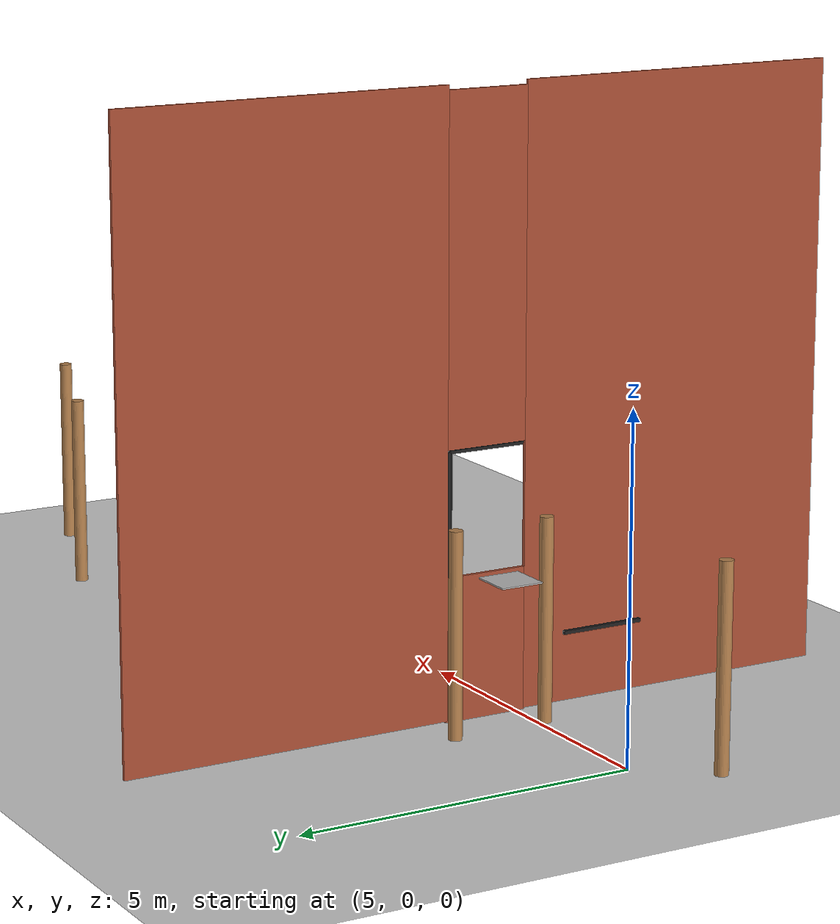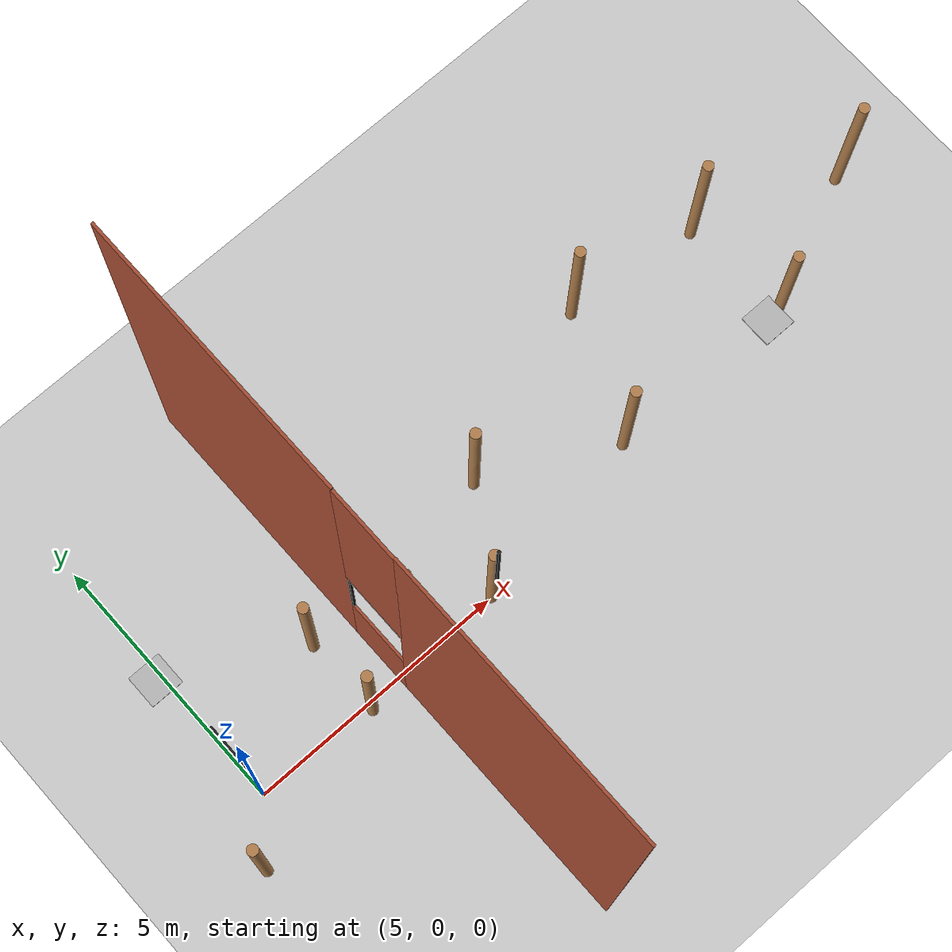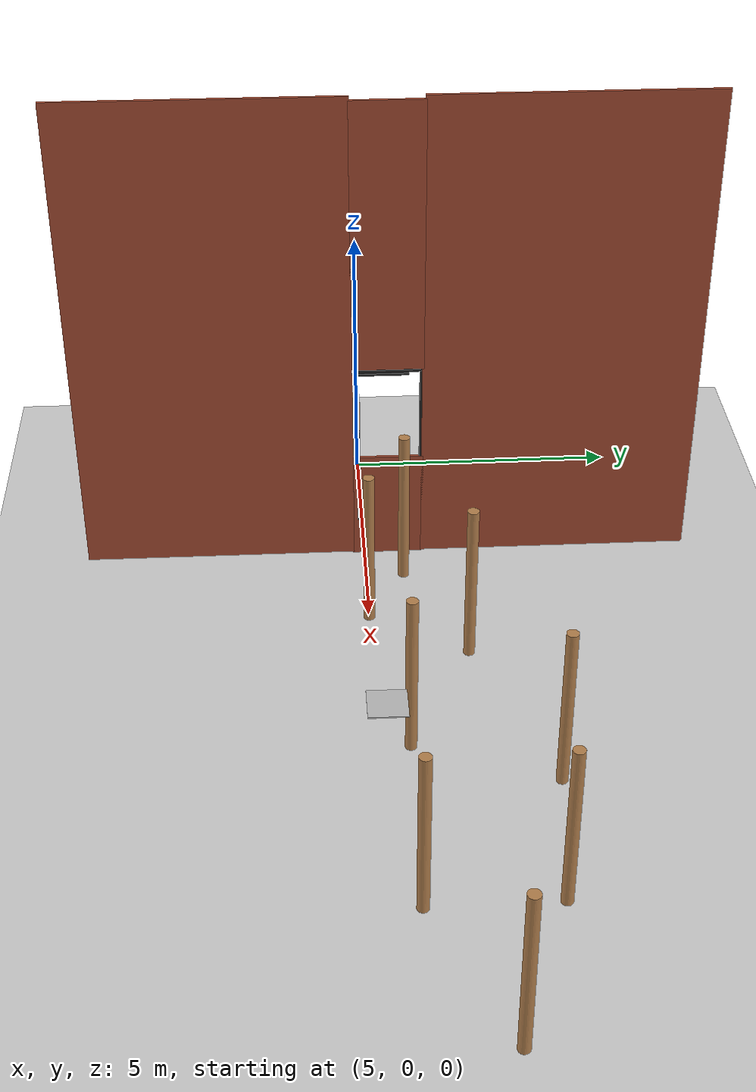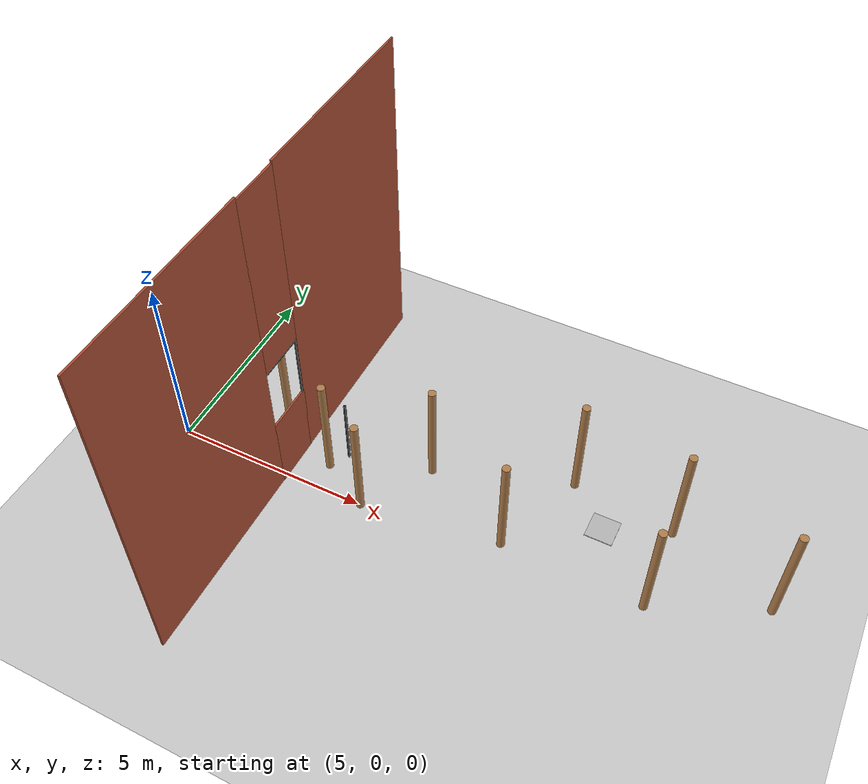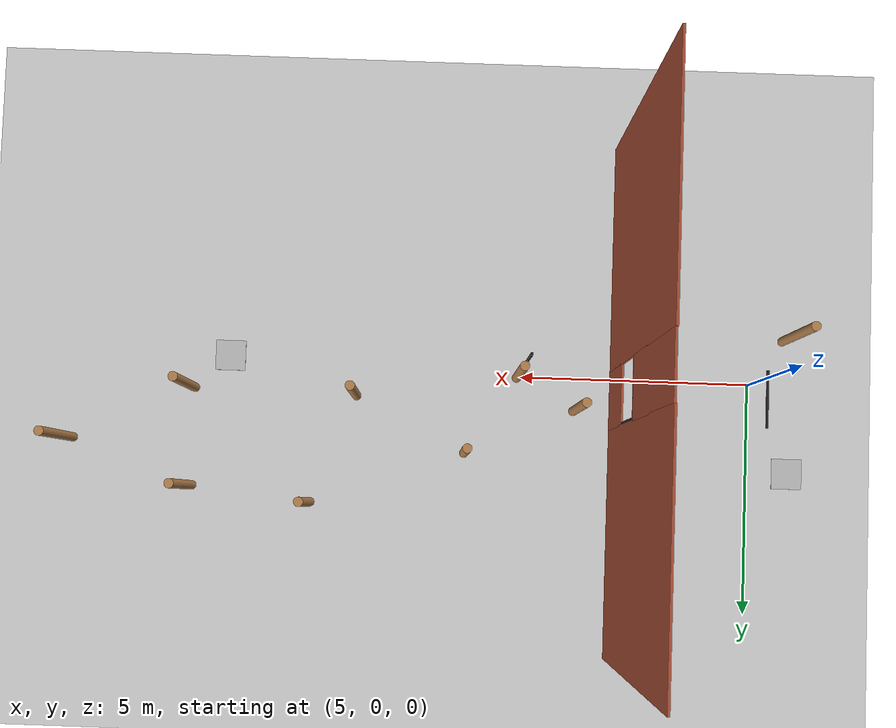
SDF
<sdf version="1.6">
 <world name="default">
  <light name="sun" type="directional">
   <pose>0 0 10 0 -0 0</pose>
   <diffuse>0.8 0.8 0.8 1</diffuse>
   <specular>0.2 0.2 0.2 1</specular>
   <attenuation>
    <range>1000</range>
    <constant>0.9</constant>
    <linear>0.01</linear>
    <quadratic>0.001</quadratic>
   </attenuation>
   <direction>-0.5 0.1 -0.9</direction>
  </light>
  <model name="ground_plane">
   <static>1</static>
   <link name="link">
    <collision name="collision">
     <geometry><plane><normal>0 0 1</normal><size>100 100</size></plane></geometry>
     <surface><friction><ode><mu>100</mu><mu2>50</mu2></ode></friction></surface>
    </collision>
    <visual name="visual">
     <cast_shadows>0</cast_shadows>
     <geometry><plane><normal>0 0 1</normal><size>100 100</size></plane></geometry>
     <material>
      <script><uri>file://media/materials/scripts/gazebo.material</uri><name>Gazebo/Grey</name></script>
     </material>
    </visual>
   </link>
  </model>
  <gravity>0 0 -9.8</gravity>
  <magnetic_field>6e-06 2.3e-05 -4.2e-05</magnetic_field>
  <atmosphere type="adiabatic"/>
  <physics name="default_physics" default="0" type="ode">
   <max_step_size>0.004</max_step_size>
   <real_time_factor>1</real_time_factor>
   <real_time_update_rate>250</real_time_update_rate>
  </physics>
  <scene><ambient>0.4 0.4 0.4 1</ambient><background>0.7 0.7 0.7 1</background><shadows>1</shadows></scene>
  <spherical_coordinates>
   <surface_model>EARTH_WGS84</surface_model>
   <latitude_deg>0</latitude_deg>
   <longitude_deg>0</longitude_deg>
   <elevation>0</elevation>
   <heading_deg>0</heading_deg>
  </spherical_coordinates>
  <model name="left">
   <pose>5 0 0 0 -0 0</pose>
   <static>1</static>
   <link name="box">
    <pose>5 -0.15 3 0 -0 0</pose>
    <collision name="collision"><geometry><box><size>0.05 0.05 1.8</size></box></geometry></collision>
    <visual name="visual">
     <geometry><box><size>0.05 0.05 1.8</size></box></geometry>
     <material>
      <script><uri>file://media/materials/scripts/gazebo.material</uri><name>Gazebo/Black</name></script>
     </material>
    </visual>
   </link>
  </model>
  <model name="bottom">
   <static>1</static>
   <link name="box">
    <pose>5 0.45 2.1 0 -0 1.57</pose>
    <collision name="collision"><geometry><box><size>1.2 0.05 0.05</size></box></geometry></collision>
    <visual name="visual">
     <geometry><box><size>1.2 0.05 0.05</size></box></geometry>
     <material>
      <script><uri>file://media/materials/scripts/gazebo.material</uri><name>Gazebo/Black</name></script>
     </material>
    </visual>
   </link>
  </model>
  <model name="right">
   <pose>5 0 0 0 -0 0</pose>
   <static>1</static>
   <link name="box">
    <pose>3 1.05 3 0 -0 0</pose>
    <collision name="collision"><geometry><box><size>0.05 0.05 1.8</size></box></geometry></collision>
    <visual name="visual">
     <geometry><box><size>0.05 0.05 1.8</size></box></geometry>
     <material>
      <script><uri>file://media/materials/scripts/gazebo.material</uri><name>Gazebo/Black</name></script>
     </material>
    </visual>
   </link>
  </model>
  <model name="top">
   <pose>5 -0 -0 0 -0 0</pose>
   <static>1</static>
   <link name="box">
    <pose>3 0.45 3.9 0 -0 1.57</pose>
    <collision name="collision"><geometry><box><size>1.2 0.05 0.05</size></box></geometry></collision>
    <visual name="visual">
     <geometry><box><size>1.2 0.05 0.05</size></box></geometry>
     <material>
      <script><uri>file://media/materials/scripts/gazebo.material</uri><name>Gazebo/Black</name></script>
     </material>
    </visual>
   </link>
  </model>
  <model name="wall_right">
   <pose>5 0 0 0 -0 0</pose>
   <static>1</static>
   <link name="box">
    <pose>3 -2.68 4.5 0 -0 0</pose>
    <collision name="collision"><geometry><box><size>0.05 5 9</size></box></geometry></collision>
    <visual name="visual">
     <geometry><box><size>0.05 5 9</size></box></geometry>
     <material>
      <script><uri>file://media/materials/scripts/gazebo.material</uri><name>Gazebo/Bricks</name></script>
     </material>
    </visual>
   </link>
  </model>
  <model name="wall_left">
   <pose>5 0 0 0 -0 0</pose>
   <static>1</static>
   <link name="box">
    <pose>3 3.57 4.5 0 -0 0</pose>
    <collision name="collision"><geometry><box><size>0.05 5 9</size></box></geometry></collision>
    <visual name="visual">
     <geometry><box><size>0.05 5 9</size></box></geometry>
     <material>
      <script><uri>file://media/materials/scripts/gazebo.material</uri><name>Gazebo/Bricks</name></script>
     </material>
    </visual>
   </link>
  </model>
  <model name="wall_top">
   <pose>5 0 0 0 -0 0</pose>
   <static>1</static>
   <link name="box">
    <pose>3 0.45 6.43 0 -0 0</pose>
    <collision name="collision"><geometry><box><size>0.05 1.3 5</size></box></geometry></collision>
    <visual name="visual">
     <geometry><box><size>0.05 1.3 5</size></box></geometry>
     <material>
      <script><uri>file://media/materials/scripts/gazebo.material</uri><name>Gazebo/Bricks</name></script>
     </material>
    </visual>
   </link>
  </model>
  <model name="wall_bottom">
   <pose>5 0 0 0 -0 0</pose>
   <static>1</static>
   <link name="box">
    <pose>3 0.45 1 0 -0 0</pose>
    <collision name="collision"><geometry><box><size>0.05 1.3 2.2</size></box></geometry></collision>
    <visual name="visual">
     <geometry><box><size>0.05 1.3 2.2</size></box></geometry>
     <material>
      <script><uri>file://media/materials/scripts/gazebo.material</uri><name>Gazebo/Bricks</name></script>
     </material>
    </visual>
   </link>
  </model>
  <model name="wooden_cylinder">
   <link name="link_0">
    <pose>0 0 1.5 0 -0 0</pose>
    <inertial>
     <mass>1</mass>
     <inertia><ixx>0.145833</ixx><ixy>0</ixy><ixz>0</ixz><iyy>0.145833</iyy><iyz>0</iyz><izz>0.125</izz></inertia>
    </inertial>
    <visual name="visual">
     <geometry><cylinder><radius>0.1</radius><length>3</length></cylinder></geometry>
     <material>
      <lighting>1</lighting>
      <script><uri>file://media/materials/scripts/gazebo.material</uri><name>Gazebo/Wood</name></script>
      <ambient>0.3 0.3 0.3 1</ambient>
      <diffuse>0.7 0.7 0.7 1</diffuse>
      <specular>0.01 0.01 0.01 1</specular>
      <emissive>0 0 0 1</emissive>
      <shader type="vertex"><normal_map>__default__</normal_map></shader>
     </material>
    </visual>
    <collision name="collision">
     <geometry><cylinder><radius>0.1</radius><length>3</length></cylinder></geometry>
     <surface>
      <friction>
       <ode><mu>1</mu><mu2>1</mu2><fdir1>0 0 0</fdir1><slip1>0</slip1><slip2>0</slip2></ode>
       <torsional>
        <coefficient>1</coefficient>
        <patch_radius>0</patch_radius>
        <surface_radius>0</surface_radius>
        <use_patch_radius>1</use_patch_radius>
        <ode><slip>0</slip></ode>
       </torsional>
      </friction>
      <bounce><restitution_coefficient>0</restitution_coefficient><threshold>1e+06</threshold></bounce>
      <contact>
       <collide_without_contact>0</collide_without_contact>
       <collide_without_contact_bitmask>1</collide_without_contact_bitmask>
       <collide_bitmask>1</collide_bitmask>
       <ode>
        <soft_cfm>0</soft_cfm>
        <soft_erp>0.2</soft_erp>
        <kp>1e+13</kp>
        <kd>1</kd>
        <max_vel>0.01</max_vel>
        <min_depth>0</min_depth>
       </ode>
       <bullet>
        <split_impulse>1</split_impulse>
        <split_impulse_penetration_threshold>-0.01</split_impulse_penetration_threshold>
        <soft_cfm>0</soft_cfm>
        <soft_erp>0.2</soft_erp>
        <kp>1e+13</kp>
        <kd>1</kd>
       </bullet>
      </contact>
     </surface>
    </collision>
   </link>
   <static>1</static>
   <pose>7.29821 -0.122779 0 0 -0 0</pose>
  </model>
  <model name="wooden_cylinder_0">
   <link name="link_0">
    <pose>0 0 1.5 0 -0 0</pose>
    <inertial>
     <mass>1</mass>
     <inertia><ixx>0.145833</ixx><ixy>0</ixy><ixz>0</ixz><iyy>0.145833</iyy><iyz>0</iyz><izz>0.125</izz></inertia>
    </inertial>
    <visual name="visual">
     <geometry><cylinder><radius>0.1</radius><length>3</length></cylinder></geometry>
     <material>
      <lighting>1</lighting>
      <script><uri>file://media/materials/scripts/gazebo.material</uri><name>Gazebo/Wood</name></script>
      <ambient>0.3 0.3 0.3 1</ambient>
      <diffuse>0.7 0.7 0.7 1</diffuse>
      <specular>0.01 0.01 0.01 1</specular>
      <emissive>0 0 0 1</emissive>
      <shader type="vertex"><normal_map>__default__</normal_map></shader>
     </material>
    </visual>
    <collision name="collision">
     <geometry><cylinder><radius>0.1</radius><length>3</length></cylinder></geometry>
     <surface>
      <friction>
       <ode><mu>1</mu><mu2>1</mu2><fdir1>0 0 0</fdir1><slip1>0</slip1><slip2>0</slip2></ode>
       <torsional>
        <coefficient>1</coefficient>
        <patch_radius>0</patch_radius>
        <surface_radius>0</surface_radius>
        <use_patch_radius>1</use_patch_radius>
        <ode><slip>0</slip></ode>
       </torsional>
      </friction>
      <bounce><restitution_coefficient>0</restitution_coefficient><threshold>1e+06</threshold></bounce>
      <contact>
       <collide_without_contact>0</collide_without_contact>
       <collide_without_contact_bitmask>1</collide_without_contact_bitmask>
       <collide_bitmask>1</collide_bitmask>
       <ode>
        <soft_cfm>0</soft_cfm>
        <soft_erp>0.2</soft_erp>
        <kp>1e+13</kp>
        <kd>1</kd>
        <max_vel>0.01</max_vel>
        <min_depth>0</min_depth>
       </ode>
       <bullet>
        <split_impulse>1</split_impulse>
        <split_impulse_penetration_threshold>-0.01</split_impulse_penetration_threshold>
        <soft_cfm>0</soft_cfm>
        <soft_erp>0.2</soft_erp>
        <kp>1e+13</kp>
        <kd>1</kd>
       </bullet>
      </contact>
     </surface>
    </collision>
   </link>
   <static>1</static>
   <pose>4.23518 -1 0 0 -0 0</pose>
  </model>
  <model name="wooden_cylinder_1">
   <link name="link_0">
    <pose>0 0 1.5 0 -0 0</pose>
    <inertial>
     <mass>1</mass>
     <inertia><ixx>0.145833</ixx><ixy>0</ixy><ixz>0</ixz><iyy>0.145833</iyy><iyz>0</iyz><izz>0.125</izz></inertia>
    </inertial>
    <visual name="visual">
     <geometry><cylinder><radius>0.1</radius><length>3</length></cylinder></geometry>
     <material>
      <lighting>1</lighting>
      <script><uri>file://media/materials/scripts/gazebo.material</uri><name>Gazebo/Wood</name></script>
      <ambient>0.3 0.3 0.3 1</ambient>
      <diffuse>0.7 0.7 0.7 1</diffuse>
      <specular>0.01 0.01 0.01 1</specular>
      <emissive>0 0 0 1</emissive>
      <shader type="vertex"><normal_map>__default__</normal_map></shader>
     </material>
    </visual>
    <collision name="collision">
     <geometry><cylinder><radius>0.1</radius><length>3</length></cylinder></geometry>
     <surface>
      <friction>
       <ode><mu>1</mu><mu2>1</mu2><fdir1>0 0 0</fdir1><slip1>0</slip1><slip2>0</slip2></ode>
       <torsional>
        <coefficient>1</coefficient>
        <patch_radius>0</patch_radius>
        <surface_radius>0</surface_radius>
        <use_patch_radius>1</use_patch_radius>
        <ode><slip>0</slip></ode>
       </torsional>
      </friction>
      <bounce><restitution_coefficient>0</restitution_coefficient><threshold>1e+06</threshold></bounce>
      <contact>
       <collide_without_contact>0</collide_without_contact>
       <collide_without_contact_bitmask>1</collide_without_contact_bitmask>
       <collide_bitmask>1</collide_bitmask>
       <ode>
        <soft_cfm>0</soft_cfm>
        <soft_erp>0.2</soft_erp>
        <kp>1e+13</kp>
        <kd>1</kd>
        <max_vel>0.01</max_vel>
        <min_depth>0</min_depth>
       </ode>
       <bullet>
        <split_impulse>1</split_impulse>
        <split_impulse_penetration_threshold>-0.01</split_impulse_penetration_threshold>
        <soft_cfm>0</soft_cfm>
        <soft_erp>0.2</soft_erp>
        <kp>1e+13</kp>
        <kd>1</kd>
       </bullet>
      </contact>
     </surface>
    </collision>
   </link>
   <static>1</static>
   <pose>7.26166 1.36422 0 0 -0 0</pose>
  </model>
  <model name="wooden_cylinder_2">
   <link name="link_0">
    <pose>0 0 1.5 0 -0 0</pose>
    <inertial>
     <mass>1</mass>
     <inertia><ixx>0.145833</ixx><ixy>0</ixy><ixz>0</ixz><iyy>0.145833</iyy><iyz>0</iyz><izz>0.125</izz></inertia>
    </inertial>
    <visual name="visual">
     <geometry><cylinder><radius>0.1</radius><length>3</length></cylinder></geometry>
     <material>
      <lighting>1</lighting>
      <script><uri>file://media/materials/scripts/gazebo.material</uri><name>Gazebo/Wood</name></script>
      <ambient>0.3 0.3 0.3 1</ambient>
      <diffuse>0.7 0.7 0.7 1</diffuse>
      <specular>0.01 0.01 0.01 1</specular>
      <emissive>0 0 0 1</emissive>
      <shader type="vertex"><normal_map>__default__</normal_map></shader>
     </material>
    </visual>
    <collision name="collision">
     <geometry><cylinder><radius>0.1</radius><length>3</length></cylinder></geometry>
     <surface>
      <friction>
       <ode><mu>1</mu><mu2>1</mu2><fdir1>0 0 0</fdir1><slip1>0</slip1><slip2>0</slip2></ode>
       <torsional>
        <coefficient>1</coefficient>
        <patch_radius>0</patch_radius>
        <surface_radius>0</surface_radius>
        <use_patch_radius>1</use_patch_radius>
        <ode><slip>0</slip></ode>
       </torsional>
      </friction>
      <bounce><restitution_coefficient>0</restitution_coefficient><threshold>1e+06</threshold></bounce>
      <contact>
       <collide_without_contact>0</collide_without_contact>
       <collide_without_contact_bitmask>1</collide_without_contact_bitmask>
       <collide_bitmask>1</collide_bitmask>
       <ode>
        <soft_cfm>0</soft_cfm>
        <soft_erp>0.2</soft_erp>
        <kp>1e+13</kp>
        <kd>1</kd>
        <max_vel>0.01</max_vel>
        <min_depth>0</min_depth>
       </ode>
       <bullet>
        <split_impulse>1</split_impulse>
        <split_impulse_penetration_threshold>-0.01</split_impulse_penetration_threshold>
        <soft_cfm>0</soft_cfm>
        <soft_erp>0.2</soft_erp>
        <kp>1e+13</kp>
        <kd>1</kd>
       </bullet>
      </contact>
     </surface>
    </collision>
   </link>
   <static>1</static>
   <pose>8.81321 0.701695 0 0 -0 0</pose>
  </model>
  <model name="wooden_cylinder_3">
   <link name="link_0">
    <pose>0 0 1.5 0 -0 0</pose>
    <inertial>
     <mass>1</mass>
     <inertia><ixx>0.145833</ixx><ixy>0</ixy><ixz>0</ixz><iyy>0.145833</iyy><iyz>0</iyz><izz>0.125</izz></inertia>
    </inertial>
    <visual name="visual">
     <geometry><cylinder><radius>0.1</radius><length>3</length></cylinder></geometry>
     <material>
      <lighting>1</lighting>
      <script><uri>file://media/materials/scripts/gazebo.material</uri><name>Gazebo/Wood</name></script>
      <ambient>0.3 0.3 0.3 1</ambient>
      <diffuse>0.7 0.7 0.7 1</diffuse>
      <specular>0.01 0.01 0.01 1</specular>
      <emissive>0 0 0 1</emissive>
      <shader type="vertex"><normal_map>__default__</normal_map></shader>
     </material>
    </visual>
    <collision name="collision">
     <geometry><cylinder><radius>0.1</radius><length>3</length></cylinder></geometry>
     <surface>
      <friction>
       <ode><mu>1</mu><mu2>1</mu2><fdir1>0 0 0</fdir1><slip1>0</slip1><slip2>0</slip2></ode>
       <torsional>
        <coefficient>1</coefficient>
        <patch_radius>0</patch_radius>
        <surface_radius>0</surface_radius>
        <use_patch_radius>1</use_patch_radius>
        <ode><slip>0</slip></ode>
       </torsional>
      </friction>
      <bounce><restitution_coefficient>0</restitution_coefficient><threshold>1e+06</threshold></bounce>
      <contact>
       <collide_without_contact>0</collide_without_contact>
       <collide_without_contact_bitmask>1</collide_without_contact_bitmask>
       <collide_bitmask>1</collide_bitmask>
       <ode>
        <soft_cfm>0</soft_cfm>
        <soft_erp>0.2</soft_erp>
        <kp>1e+13</kp>
        <kd>1</kd>
        <max_vel>0.01</max_vel>
        <min_depth>0</min_depth>
       </ode>
       <bullet>
        <split_impulse>1</split_impulse>
        <split_impulse_penetration_threshold>-0.01</split_impulse_penetration_threshold>
        <soft_cfm>0</soft_cfm>
        <soft_erp>0.2</soft_erp>
        <kp>1e+13</kp>
        <kd>1</kd>
       </bullet>
      </contact>
     </surface>
    </collision>
   </link>
   <static>1</static>
   <pose>10.0782 0.008966 0 0 -0 0</pose>
  </model>
  <model name="wooden_cylinder_4">
   <link name="link_0">
    <pose>0 0 1.5 0 -0 0</pose>
    <inertial>
     <mass>1</mass>
     <inertia><ixx>0.145833</ixx><ixy>0</ixy><ixz>0</ixz><iyy>0.145833</iyy><iyz>0</iyz><izz>0.125</izz></inertia>
    </inertial>
    <visual name="visual">
     <geometry><cylinder><radius>0.1</radius><length>3</length></cylinder></geometry>
     <material>
      <lighting>1</lighting>
      <script><uri>file://media/materials/scripts/gazebo.material</uri><name>Gazebo/Wood</name></script>
      <ambient>0.3 0.3 0.3 1</ambient>
      <diffuse>0.7 0.7 0.7 1</diffuse>
      <specular>0.01 0.01 0.01 1</specular>
      <emissive>0 0 0 1</emissive>
      <shader type="vertex"><normal_map>__default__</normal_map></shader>
     </material>
    </visual>
    <collision name="collision">
     <geometry><cylinder><radius>0.1</radius><length>3</length></cylinder></geometry>
     <surface>
      <friction>
       <ode><mu>1</mu><mu2>1</mu2><fdir1>0 0 0</fdir1><slip1>0</slip1><slip2>0</slip2></ode>
       <torsional>
        <coefficient>1</coefficient>
        <patch_radius>0</patch_radius>
        <surface_radius>0</surface_radius>
        <use_patch_radius>1</use_patch_radius>
        <ode><slip>0</slip></ode>
       </torsional>
      </friction>
      <bounce><restitution_coefficient>0</restitution_coefficient><threshold>1e+06</threshold></bounce>
      <contact>
       <collide_without_contact>0</collide_without_contact>
       <collide_without_contact_bitmask>1</collide_without_contact_bitmask>
       <collide_bitmask>1</collide_bitmask>
       <ode>
        <soft_cfm>0</soft_cfm>
        <soft_erp>0.2</soft_erp>
        <kp>1e+13</kp>
        <kd>1</kd>
        <max_vel>0.01</max_vel>
        <min_depth>0</min_depth>
       </ode>
       <bullet>
        <split_impulse>1</split_impulse>
        <split_impulse_penetration_threshold>-0.01</split_impulse_penetration_threshold>
        <soft_cfm>0</soft_cfm>
        <soft_erp>0.2</soft_erp>
        <kp>1e+13</kp>
        <kd>1</kd>
       </bullet>
      </contact>
     </surface>
    </collision>
   </link>
   <static>1</static>
   <pose>11.1844 1.70574 0 0 -0 0</pose>
  </model>
  <model name="wooden_cylinder_5">
   <link name="link_0">
    <pose>0 0 1.5 0 -0 0</pose>
    <inertial>
     <mass>1</mass>
     <inertia><ixx>0.145833</ixx><ixy>0</ixy><ixz>0</ixz><iyy>0.145833</iyy><iyz>0</iyz><izz>0.125</izz></inertia>
    </inertial>
    <visual name="visual">
     <geometry><cylinder><radius>0.1</radius><length>3</length></cylinder></geometry>
     <material>
      <lighting>1</lighting>
      <script><uri>file://media/materials/scripts/gazebo.material</uri><name>Gazebo/Wood</name></script>
      <ambient>0.3 0.3 0.3 1</ambient>
      <diffuse>0.7 0.7 0.7 1</diffuse>
      <specular>0.01 0.01 0.01 1</specular>
      <emissive>0 0 0 1</emissive>
      <shader type="vertex"><normal_map>__default__</normal_map></shader>
     </material>
    </visual>
    <collision name="collision">
     <geometry><cylinder><radius>0.1</radius><length>3</length></cylinder></geometry>
     <surface>
      <friction>
       <ode><mu>1</mu><mu2>1</mu2><fdir1>0 0 0</fdir1><slip1>0</slip1><slip2>0</slip2></ode>
       <torsional>
        <coefficient>1</coefficient>
        <patch_radius>0</patch_radius>
        <surface_radius>0</surface_radius>
        <use_patch_radius>1</use_patch_radius>
        <ode><slip>0</slip></ode>
       </torsional>
      </friction>
      <bounce><restitution_coefficient>0</restitution_coefficient><threshold>1e+06</threshold></bounce>
      <contact>
       <collide_without_contact>0</collide_without_contact>
       <collide_without_contact_bitmask>1</collide_without_contact_bitmask>
       <collide_bitmask>1</collide_bitmask>
       <ode>
        <soft_cfm>0</soft_cfm>
        <soft_erp>0.2</soft_erp>
        <kp>1e+13</kp>
        <kd>1</kd>
        <max_vel>0.01</max_vel>
        <min_depth>0</min_depth>
       </ode>
       <bullet>
        <split_impulse>1</split_impulse>
        <split_impulse_penetration_threshold>-0.01</split_impulse_penetration_threshold>
        <soft_cfm>0</soft_cfm>
        <soft_erp>0.2</soft_erp>
        <kp>1e+13</kp>
        <kd>1</kd>
       </bullet>
      </contact>
     </surface>
    </collision>
   </link>
   <static>1</static>
   <pose>13.5873 0.52465 0 0 -0 0</pose>
  </model>
  <model name="wooden_cylinder_6">
   <link name="link_0">
    <pose>0 0 1.5 0 -0 0</pose>
    <inertial>
     <mass>1</mass>
     <inertia><ixx>0.145833</ixx><ixy>0</ixy><ixz>0</ixz><iyy>0.145833</iyy><iyz>0</iyz><izz>0.125</izz></inertia>
    </inertial>
    <visual name="visual">
     <geometry><cylinder><radius>0.1</radius><length>3</length></cylinder></geometry>
     <material>
      <lighting>1</lighting>
      <script><uri>file://media/materials/scripts/gazebo.material</uri><name>Gazebo/Wood</name></script>
      <ambient>0.3 0.3 0.3 1</ambient>
      <diffuse>0.7 0.7 0.7 1</diffuse>
      <specular>0.01 0.01 0.01 1</specular>
      <emissive>0 0 0 1</emissive>
      <shader type="vertex"><normal_map>__default__</normal_map></shader>
     </material>
    </visual>
    <collision name="collision">
     <geometry><cylinder><radius>0.1</radius><length>3</length></cylinder></geometry>
     <surface>
      <friction>
       <ode><mu>1</mu><mu2>1</mu2><fdir1>0 0 0</fdir1><slip1>0</slip1><slip2>0</slip2></ode>
       <torsional>
        <coefficient>1</coefficient>
        <patch_radius>0</patch_radius>
        <surface_radius>0</surface_radius>
        <use_patch_radius>1</use_patch_radius>
        <ode><slip>0</slip></ode>
       </torsional>
      </friction>
      <bounce><restitution_coefficient>0</restitution_coefficient><threshold>1e+06</threshold></bounce>
      <contact>
       <collide_without_contact>0</collide_without_contact>
       <collide_without_contact_bitmask>1</collide_without_contact_bitmask>
       <collide_bitmask>1</collide_bitmask>
       <ode>
        <soft_cfm>0</soft_cfm>
        <soft_erp>0.2</soft_erp>
        <kp>1e+13</kp>
        <kd>1</kd>
        <max_vel>0.01</max_vel>
        <min_depth>0</min_depth>
       </ode>
       <bullet>
        <split_impulse>1</split_impulse>
        <split_impulse_penetration_threshold>-0.01</split_impulse_penetration_threshold>
        <soft_cfm>0</soft_cfm>
        <soft_erp>0.2</soft_erp>
        <kp>1e+13</kp>
        <kd>1</kd>
       </bullet>
      </contact>
     </surface>
    </collision>
   </link>
   <static>1</static>
   <pose>14.5286 2.89161 0 0 -0 0</pose>
  </model>
  <model name="wooden_cylinder_7">
   <link name="link_0">
    <pose>0 0 1.5 0 -0 0</pose>
    <inertial>
     <mass>1</mass>
     <inertia><ixx>0.145833</ixx><ixy>0</ixy><ixz>0</ixz><iyy>0.145833</iyy><iyz>0</iyz><izz>0.125</izz></inertia>
    </inertial>
    <visual name="visual">
     <geometry><cylinder><radius>0.1</radius><length>3</length></cylinder></geometry>
     <material>
      <lighting>1</lighting>
      <script><uri>file://media/materials/scripts/gazebo.material</uri><name>Gazebo/Wood</name></script>
      <ambient>0.3 0.3 0.3 1</ambient>
      <diffuse>0.7 0.7 0.7 1</diffuse>
      <specular>0.01 0.01 0.01 1</specular>
      <emissive>0 0 0 1</emissive>
      <shader type="vertex"><normal_map>__default__</normal_map></shader>
     </material>
    </visual>
    <collision name="collision">
     <geometry><cylinder><radius>0.1</radius><length>3</length></cylinder></geometry>
     <surface>
      <friction>
       <ode><mu>1</mu><mu2>1</mu2><fdir1>0 0 0</fdir1><slip1>0</slip1><slip2>0</slip2></ode>
       <torsional>
        <coefficient>1</coefficient>
        <patch_radius>0</patch_radius>
        <surface_radius>0</surface_radius>
        <use_patch_radius>1</use_patch_radius>
        <ode><slip>0</slip></ode>
       </torsional>
      </friction>
      <bounce><restitution_coefficient>0</restitution_coefficient><threshold>1e+06</threshold></bounce>
      <contact>
       <collide_without_contact>0</collide_without_contact>
       <collide_without_contact_bitmask>1</collide_without_contact_bitmask>
       <collide_bitmask>1</collide_bitmask>
       <ode>
        <soft_cfm>0</soft_cfm>
        <soft_erp>0.2</soft_erp>
        <kp>1e+13</kp>
        <kd>1</kd>
        <max_vel>0.01</max_vel>
        <min_depth>0</min_depth>
       </ode>
       <bullet>
        <split_impulse>1</split_impulse>
        <split_impulse_penetration_threshold>-0.01</split_impulse_penetration_threshold>
        <soft_cfm>0</soft_cfm>
        <soft_erp>0.2</soft_erp>
        <kp>1e+13</kp>
        <kd>1</kd>
       </bullet>
      </contact>
     </surface>
    </collision>
   </link>
   <static>1</static>
   <pose>17.1521 0.46382 0 0 -0 0</pose>
  </model>
  <model name="wooden_cylinder_8">
   <link name="link_0">
    <pose>0 0 1.5 0 -0 0</pose>
    <inertial>
     <mass>1</mass>
     <inertia><ixx>0.145833</ixx><ixy>0</ixy><ixz>0</ixz><iyy>0.145833</iyy><iyz>0</iyz><izz>0.125</izz></inertia>
    </inertial>
    <visual name="visual">
     <geometry><cylinder><radius>0.1</radius><length>3</length></cylinder></geometry>
     <material>
      <lighting>1</lighting>
      <script><uri>file://media/materials/scripts/gazebo.material</uri><name>Gazebo/Wood</name></script>
      <ambient>0.3 0.3 0.3 1</ambient>
      <diffuse>0.7 0.7 0.7 1</diffuse>
      <specular>0.01 0.01 0.01 1</specular>
      <emissive>0 0 0 1</emissive>
      <shader type="vertex"><normal_map>__default__</normal_map></shader>
     </material>
    </visual>
    <collision name="collision">
     <geometry><cylinder><radius>0.1</radius><length>3</length></cylinder></geometry>
     <surface>
      <friction>
       <ode><mu>1</mu><mu2>1</mu2><fdir1>0 0 0</fdir1><slip1>0</slip1><slip2>0</slip2></ode>
       <torsional>
        <coefficient>1</coefficient>
        <patch_radius>0</patch_radius>
        <surface_radius>0</surface_radius>
        <use_patch_radius>1</use_patch_radius>
        <ode><slip>0</slip></ode>
       </torsional>
      </friction>
      <bounce><restitution_coefficient>0</restitution_coefficient><threshold>1e+06</threshold></bounce>
      <contact>
       <collide_without_contact>0</collide_without_contact>
       <collide_without_contact_bitmask>1</collide_without_contact_bitmask>
       <collide_bitmask>1</collide_bitmask>
       <ode>
        <soft_cfm>0</soft_cfm>
        <soft_erp>0.2</soft_erp>
        <kp>1e+13</kp>
        <kd>1</kd>
        <max_vel>0.01</max_vel>
        <min_depth>0</min_depth>
       </ode>
       <bullet>
        <split_impulse>1</split_impulse>
        <split_impulse_penetration_threshold>-0.01</split_impulse_penetration_threshold>
        <soft_cfm>0</soft_cfm>
        <soft_erp>0.2</soft_erp>
        <kp>1e+13</kp>
        <kd>1</kd>
       </bullet>
      </contact>
     </surface>
    </collision>
   </link>
   <static>1</static>
   <pose>17.1329 2.61171 0 0 -0 0</pose>
  </model>
  <model name="wooden_cylinder_9">
   <link name="link_0">
    <pose>0 0 1.5 0 -0 0</pose>
    <inertial>
     <mass>1</mass>
     <inertia><ixx>0.145833</ixx><ixy>0</ixy><ixz>0</ixz><iyy>0.145833</iyy><iyz>0</iyz><izz>0.125</izz></inertia>
    </inertial>
    <visual name="visual">
     <geometry><cylinder><radius>0.1</radius><length>3</length></cylinder></geometry>
     <material>
      <lighting>1</lighting>
      <script><uri>file://media/materials/scripts/gazebo.material</uri><name>Gazebo/Wood</name></script>
      <ambient>0.3 0.3 0.3 1</ambient>
      <diffuse>0.7 0.7 0.7 1</diffuse>
      <specular>0.01 0.01 0.01 1</specular>
      <emissive>0 0 0 1</emissive>
      <shader type="vertex"><normal_map>__default__</normal_map></shader>
     </material>
    </visual>
    <collision name="collision">
     <geometry><cylinder><radius>0.1</radius><length>3</length></cylinder></geometry>
     <surface>
      <friction>
       <ode><mu>1</mu><mu2>1</mu2><fdir1>0 0 0</fdir1><slip1>0</slip1><slip2>0</slip2></ode>
       <torsional>
        <coefficient>1</coefficient>
        <patch_radius>0</patch_radius>
        <surface_radius>0</surface_radius>
        <use_patch_radius>1</use_patch_radius>
        <ode><slip>0</slip></ode>
       </torsional>
      </friction>
      <bounce><restitution_coefficient>0</restitution_coefficient><threshold>1e+06</threshold></bounce>
      <contact>
       <collide_without_contact>0</collide_without_contact>
       <collide_without_contact_bitmask>1</collide_without_contact_bitmask>
       <collide_bitmask>1</collide_bitmask>
       <ode>
        <soft_cfm>0</soft_cfm>
        <soft_erp>0.2</soft_erp>
        <kp>1e+13</kp>
        <kd>1</kd>
        <max_vel>0.01</max_vel>
        <min_depth>0</min_depth>
       </ode>
       <bullet>
        <split_impulse>1</split_impulse>
        <split_impulse_penetration_threshold>-0.01</split_impulse_penetration_threshold>
        <soft_cfm>0</soft_cfm>
        <soft_erp>0.2</soft_erp>
        <kp>1e+13</kp>
        <kd>1</kd>
       </bullet>
      </contact>
     </surface>
    </collision>
   </link>
   <static>1</static>
   <pose>19.787 1.65135 0 0 -0 0</pose>
  </model>
  <model name="landing_pad">
   <pose>16 0 3.0 0 -0 0</pose>
   <static>1</static>
   <link name="link">
    <inertial>
     <mass>0.5</mass>
     <inertia><ixx>0.001</ixx><ixy>0</ixy><ixz>0</ixz><iyy>0.001</iyy><iyz>0</iyz><izz>0.001</izz></inertia>
    </inertial>
    <collision name="collision"><geometry><box><size>0.6 0.6 0.02</size></box></geometry></collision>
    <visual name="visual">
     <geometry><box><size>0.6 0.6 0.02</size></box></geometry>
     <material>
      <script>
       <uri>model://landing_pad/materials/scripts</uri>
       <uri>model://landing_pad/materials/textures</uri>
       <name>Cube/landing_pad</name>
      </script>
     </material>
    </visual>
   </link>
   <plugin name="p3d_base_controller" filename="libgazebo_ros_p3d.so">
    <alwaysOn>1</alwaysOn>
    <updateRate>30.0</updateRate>
    <bodyName>link</bodyName>
    <topicName>ground_truth/landing_pad</topicName>
    <gaussianNoise>0.00</gaussianNoise>
    <frameName>map</frameName>
    <xyzOffsets>0 0 0</xyzOffsets>
    <rpyOffsets>0 0 0</rpyOffsets>
   </plugin>
  </model>
  <model name="landing_pad_1">
   <pose>4.8 2 3.0 0 -0 0</pose>
   <static>1</static>
   <link name="link">
    <inertial>
     <mass>0.5</mass>
     <inertia><ixx>0.001</ixx><ixy>0</ixy><ixz>0</ixz><iyy>0.001</iyy><iyz>0</iyz><izz>0.001</izz></inertia>
    </inertial>
    <collision name="collision"><geometry><box><size>0.6 0.6 0.02</size></box></geometry></collision>
    <visual name="visual">
     <geometry><box><size>0.6 0.6 0.02</size></box></geometry>
     <material>
      <script>
       <uri>model://landing_pad/materials/scripts</uri>
       <uri>model://landing_pad/materials/textures</uri>
       <name>Cube/landing_pad</name>
      </script>
     </material>
    </visual>
   </link>
   <plugin name="p3d_base_controller" filename="libgazebo_ros_p3d.so">
    <alwaysOn>1</alwaysOn>
    <updateRate>30.0</updateRate>
    <bodyName>link</bodyName>
    <topicName>ground_truth/landing_pad</topicName>
    <gaussianNoise>0.00</gaussianNoise>
    <frameName>map</frameName>
    <xyzOffsets>0 0 0</xyzOffsets>
    <rpyOffsets>0 0 0</rpyOffsets>
   </plugin>
  </model>
 </world>
</sdf>
